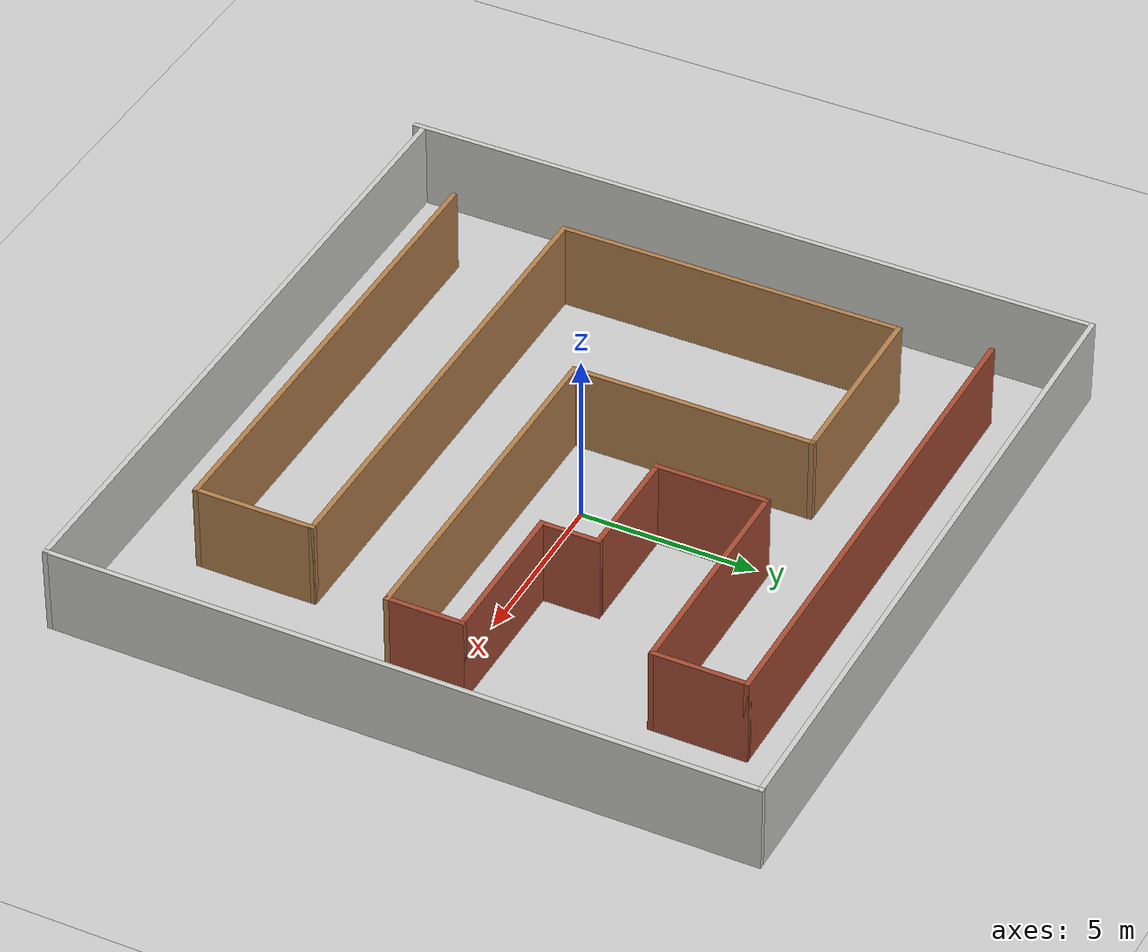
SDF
<sdf version="1.6">
 <world name="default">
  <light name="sun" type="directional">
   <pose>0 0 10 0 -0 0</pose>
   <diffuse>0.8 0.8 0.8 1</diffuse>
   <specular>0.2 0.2 0.2 1</specular>
   <attenuation>
    <range>1000</range>
    <constant>0.9</constant>
    <linear>0.01</linear>
    <quadratic>0.001</quadratic>
   </attenuation>
   <direction>-0.5 0.1 -0.9</direction>
  </light>
  <model name="ground_plane">
   <static>1</static>
   <link name="link">
    <collision name="collision">
     <geometry><plane><normal>0 0 1</normal><size>100 100</size></plane></geometry>
     <surface><friction><ode><mu>100</mu><mu2>50</mu2></ode></friction></surface>
    </collision>
    <visual name="visual">
     <cast_shadows>0</cast_shadows>
     <geometry><plane><normal>0 0 1</normal><size>100 100</size></plane></geometry>
     <material>
      <script><uri>file://media/materials/scripts/gazebo.material</uri><name>Gazebo/Grey</name></script>
     </material>
    </visual>
   </link>
  </model>
  <gravity>0 0 -9.8</gravity>
  <magnetic_field>6e-06 2.3e-05 -4.2e-05</magnetic_field>
  <atmosphere type="adiabatic"/>
  <physics name="default_physics" default="0" type="ode">
   <max_step_size>0.001</max_step_size>
   <real_time_factor>1</real_time_factor>
   <real_time_update_rate>1000</real_time_update_rate>
  </physics>
  <scene><ambient>0.4 0.4 0.4 1</ambient><background>0.7 0.7 0.7 1</background><shadows>1</shadows></scene>
  <spherical_coordinates>
   <surface_model>EARTH_WGS84</surface_model>
   <latitude_deg>0</latitude_deg>
   <longitude_deg>0</longitude_deg>
   <elevation>0</elevation>
   <heading_deg>0</heading_deg>
  </spherical_coordinates>
  <model name="MazeA">
   <pose>-0.16224 -0.208695 0 0 -0 0</pose>
   <link name="Wall_10">
    <collision name="Wall_10_Collision">
     <geometry><box><size>20.5 0.15 2.5</size></box></geometry>
     <pose>0 0 1.25 0 -0 0</pose>
    </collision>
    <visual name="Wall_10_Visual">
     <pose>0 0 1.25 0 -0 0</pose>
     <geometry><box><size>20.5 0.15 2.5</size></box></geometry>
     <material>
      <script><uri>file://media/materials/scripts/gazebo.material</uri><name>Gazebo/CeilingTiled</name></script>
      <ambient>1 1 1 1</ambient>
     </material>
     <meta><layer>0</layer></meta>
    </visual>
    <pose>-0 -9.8 0 0 -0 3.14159</pose>
   </link>
   <link name="Wall_12">
    <collision name="Wall_12_Collision">
     <geometry><box><size>15 0.15 2.5</size></box></geometry>
     <pose>0 0 1.25 0 -0 0</pose>
    </collision>
    <visual name="Wall_12_Visual">
     <pose>0 0 1.25 0 -0 0</pose>
     <geometry><box><size>15 0.15 2.5</size></box></geometry>
     <material>
      <script><uri>file://media/materials/scripts/gazebo.material</uri><name>Gazebo/Bricks</name></script>
      <ambient>1 1 1 1</ambient>
     </material>
     <meta><layer>0</layer></meta>
    </visual>
    <pose>-0.582205 8.11364 0 0 -0 0</pose>
   </link>
   <link name="Wall_13">
    <collision name="Wall_13_Collision">
     <geometry><box><size>2.75 0.15 2.5</size></box></geometry>
     <pose>0 0 1.25 0 -0 0</pose>
    </collision>
    <visual name="Wall_13_Visual">
     <pose>0 0 1.25 0 -0 0</pose>
     <geometry><box><size>2.75 0.15 2.5</size></box></geometry>
     <material>
      <script><uri>file://media/materials/scripts/gazebo.material</uri><name>Gazebo/Bricks</name></script>
      <ambient>1 1 1 1</ambient>
     </material>
     <meta><layer>0</layer></meta>
    </visual>
    <pose>6.84279 6.81364 0 0 -0 -1.5708</pose>
   </link>
   <link name="Wall_14">
    <collision name="Wall_14_Collision">
     <geometry><box><size>6.75 0.15 2.5</size></box></geometry>
     <pose>0 0 1.25 0 -0 0</pose>
    </collision>
    <visual name="Wall_14_Visual">
     <pose>0 0 1.25 0 -0 0</pose>
     <geometry><box><size>6.75 0.15 2.5</size></box></geometry>
     <material>
      <script><uri>file://media/materials/scripts/gazebo.material</uri><name>Gazebo/Bricks</name></script>
      <ambient>1 1 1 1</ambient>
     </material>
     <meta><layer>0</layer></meta>
    </visual>
    <pose>3.54279 5.51364 0 0 -0 3.14159</pose>
   </link>
   <link name="Wall_15">
    <collision name="Wall_15_Collision">
     <geometry><box><size>3.25 0.15 2.5</size></box></geometry>
     <pose>0 0 1.25 0 -0 0</pose>
    </collision>
    <visual name="Wall_15_Visual">
     <pose>0 0 1.25 0 -0 0</pose>
     <geometry><box><size>3.25 0.15 2.5</size></box></geometry>
     <material>
      <script><uri>file://media/materials/scripts/gazebo.material</uri><name>Gazebo/Bricks</name></script>
      <ambient>1 1 1 1</ambient>
     </material>
     <meta><layer>0</layer></meta>
    </visual>
    <pose>0.242795 3.96364 0 0 -0 -1.5708</pose>
   </link>
   <link name="Wall_16">
    <collision name="Wall_16_Collision">
     <geometry><box><size>3.5 0.15 2.5</size></box></geometry>
     <pose>0 0 1.25 0 -0 0</pose>
    </collision>
    <visual name="Wall_16_Visual">
     <pose>0 0 1.25 0 -0 0</pose>
     <geometry><box><size>3.5 0.15 2.5</size></box></geometry>
     <material>
      <script><uri>file://media/materials/scripts/gazebo.material</uri><name>Gazebo/Bricks</name></script>
      <ambient>1 1 1 1</ambient>
     </material>
     <meta><layer>0</layer></meta>
    </visual>
    <pose>1.91779 2.41364 0 0 -0 0</pose>
   </link>
   <link name="Wall_17">
    <collision name="Wall_17_Collision">
     <geometry><box><size>1.75 0.15 2.5</size></box></geometry>
     <pose>0 0 1.25 0 -0 0</pose>
    </collision>
    <visual name="Wall_17_Visual">
     <pose>0 0 1.25 0 -0 0</pose>
     <geometry><box><size>1.75 0.15 2.5</size></box></geometry>
     <material>
      <script><uri>file://media/materials/scripts/gazebo.material</uri><name>Gazebo/Bricks</name></script>
      <ambient>1 1 1 1</ambient>
     </material>
     <meta><layer>0</layer></meta>
    </visual>
    <pose>3.5928 1.61364 0 0 -0 -1.5708</pose>
   </link>
   <link name="Wall_18">
    <collision name="Wall_18_Collision">
     <geometry><box><size>4.5 0.15 2.5</size></box></geometry>
     <pose>0 0 1.25 0 -0 0</pose>
    </collision>
    <visual name="Wall_18_Visual">
     <pose>0 0 1.25 0 -0 0</pose>
     <geometry><box><size>4.5 0.15 2.5</size></box></geometry>
     <material>
      <script><uri>file://media/materials/scripts/gazebo.material</uri><name>Gazebo/Bricks</name></script>
      <ambient>1 1 1 1</ambient>
     </material>
     <meta><layer>0</layer></meta>
    </visual>
    <pose>5.76779 0.813639 0 0 -0 0</pose>
   </link>
   <link name="Wall_19">
    <collision name="Wall_19_Collision">
     <geometry><box><size>2.25 0.15 2.5</size></box></geometry>
     <pose>0 0 1.25 0 -0 0</pose>
    </collision>
    <visual name="Wall_19_Visual">
     <pose>0 0 1.25 0 -0 0</pose>
     <geometry><box><size>2.25 0.15 2.5</size></box></geometry>
     <material>
      <script><uri>file://media/materials/scripts/gazebo.material</uri><name>Gazebo/Bricks</name></script>
      <ambient>1 1 1 1</ambient>
     </material>
     <meta><layer>0</layer></meta>
    </visual>
    <pose>7.9428 -0.236361 0 0 -0 -1.5708</pose>
   </link>
   <link name="Wall_20">
    <collision name="Wall_20_Collision">
     <geometry><box><size>10.5 0.15 2.5</size></box></geometry>
     <pose>0 0 1.25 0 -0 0</pose>
    </collision>
    <visual name="Wall_20_Visual">
     <pose>0 0 1.25 0 -0 0</pose>
     <geometry><box><size>10.5 0.15 2.5</size></box></geometry>
     <material>
      <script><uri>file://media/materials/scripts/gazebo.material</uri><name>Gazebo/Wood</name></script>
      <ambient>1 1 1 1</ambient>
     </material>
     <meta><layer>0</layer></meta>
    </visual>
    <pose>2.7678 -1.28636 0 0 -0 3.14159</pose>
   </link>
   <link name="Wall_21">
    <collision name="Wall_21_Collision">
     <geometry><box><size>7 0.15 2.5</size></box></geometry>
     <pose>0 0 1.25 0 -0 0</pose>
    </collision>
    <visual name="Wall_21_Visual">
     <pose>0 0 1.25 0 -0 0</pose>
     <geometry><box><size>7 0.15 2.5</size></box></geometry>
     <material>
      <script><uri>file://media/materials/scripts/gazebo.material</uri><name>Gazebo/Wood</name></script>
      <ambient>1 1 1 1</ambient>
     </material>
     <meta><layer>0</layer></meta>
    </visual>
    <pose>-2.4072 2.13864 0 0 -0 1.5708</pose>
   </link>
   <link name="Wall_22">
    <collision name="Wall_22_Collision">
     <geometry><box><size>5.5 0.15 2.5</size></box></geometry>
     <pose>0 0 1.25 0 -0 0</pose>
    </collision>
    <visual name="Wall_22_Visual">
     <pose>0 0 1.25 0 -0 0</pose>
     <geometry><box><size>5.5 0.15 2.5</size></box></geometry>
     <material>
      <script><uri>file://media/materials/scripts/gazebo.material</uri><name>Gazebo/Wood</name></script>
      <ambient>1 1 1 1</ambient>
     </material>
     <meta><layer>0</layer></meta>
    </visual>
    <pose>-5.08221 5.56364 0 0 -0 3.14159</pose>
   </link>
   <link name="Wall_23">
    <collision name="Wall_23_Collision">
     <geometry><box><size>10 0.15 2.5</size></box></geometry>
     <pose>0 0 1.25 0 -0 0</pose>
    </collision>
    <visual name="Wall_23_Visual">
     <pose>0 0 1.25 0 -0 0</pose>
     <geometry><box><size>10 0.15 2.5</size></box></geometry>
     <material>
      <script><uri>file://media/materials/scripts/gazebo.material</uri><name>Gazebo/Wood</name></script>
      <ambient>1 1 1 1</ambient>
     </material>
     <meta><layer>0</layer></meta>
    </visual>
    <pose>-7.7572 0.638639 0 0 -0 -1.5708</pose>
   </link>
   <link name="Wall_24">
    <collision name="Wall_24_Collision">
     <geometry><box><size>14.25 0.15 2.5</size></box></geometry>
     <pose>0 0 1.25 0 -0 0</pose>
    </collision>
    <visual name="Wall_24_Visual">
     <pose>0 0 1.25 0 -0 0</pose>
     <geometry><box><size>14.25 0.15 2.5</size></box></geometry>
     <material>
      <script><uri>file://media/materials/scripts/gazebo.material</uri><name>Gazebo/Wood</name></script>
      <ambient>1 1 1 1</ambient>
     </material>
     <meta><layer>0</layer></meta>
    </visual>
    <pose>-0.707205 -4.28636 0 0 -0 0</pose>
   </link>
   <link name="Wall_25">
    <collision name="Wall_25_Collision">
     <geometry><box><size>3.5 0.15 2.5</size></box></geometry>
     <pose>0 0 1.25 0 -0 0</pose>
    </collision>
    <visual name="Wall_25_Visual">
     <pose>0 0 1.25 0 -0 0</pose>
     <geometry><box><size>3.5 0.15 2.5</size></box></geometry>
     <material>
      <script><uri>file://media/materials/scripts/gazebo.material</uri><name>Gazebo/Wood</name></script>
      <ambient>1 1 1 1</ambient>
     </material>
     <meta><layer>0</layer></meta>
    </visual>
    <pose>6.34279 -5.96136 0 0 -0 -1.5708</pose>
   </link>
   <link name="Wall_26">
    <collision name="Wall_26_Collision">
     <geometry><box><size>14.25 0.15 2.5</size></box></geometry>
     <pose>0 0 1.25 0 -0 0</pose>
    </collision>
    <visual name="Wall_26_Visual">
     <pose>0 0 1.25 0 -0 0</pose>
     <geometry><box><size>14.25 0.15 2.5</size></box></geometry>
     <material>
      <script><uri>file://media/materials/scripts/gazebo.material</uri><name>Gazebo/Wood</name></script>
      <ambient>1 1 1 1</ambient>
     </material>
     <meta><layer>0</layer></meta>
    </visual>
    <pose>-0.707205 -7.63636 0 0 -0 3.14159</pose>
   </link>
   <link name="Wall_7">
    <collision name="Wall_7_Collision">
     <geometry><box><size>20.25 0.15 2.5</size></box></geometry>
     <pose>0 0 1.25 0 -0 0</pose>
    </collision>
    <visual name="Wall_7_Visual">
     <pose>0 0 1.25 0 -0 0</pose>
     <geometry><box><size>20.25 0.15 2.5</size></box></geometry>
     <material>
      <script><uri>file://media/materials/scripts/gazebo.material</uri><name>Gazebo/CeilingTiled</name></script>
      <ambient>1 1 1 1</ambient>
     </material>
     <meta><layer>0</layer></meta>
    </visual>
    <pose>-10.175 -0 0 0 -0 1.5708</pose>
   </link>
   <link name="Wall_8">
    <collision name="Wall_8_Collision">
     <geometry><box><size>20.5 0.15 2.5</size></box></geometry>
     <pose>0 0 1.25 0 -0 0</pose>
    </collision>
    <visual name="Wall_8_Visual">
     <pose>0 0 1.25 0 -0 0</pose>
     <geometry><box><size>20.5 0.15 2.5</size></box></geometry>
     <material>
      <script><uri>file://media/materials/scripts/gazebo.material</uri><name>Gazebo/CeilingTiled</name></script>
      <ambient>1 1 1 1</ambient>
     </material>
     <meta><layer>0</layer></meta>
    </visual>
    <pose>-0 10.05 0 0 -0 0</pose>
   </link>
   <link name="Wall_9">
    <collision name="Wall_9_Collision">
     <geometry><box><size>20 0.15 2.5</size></box></geometry>
     <pose>0 0 1.25 0 -0 0</pose>
    </collision>
    <visual name="Wall_9_Visual">
     <pose>0 0 1.25 0 -0 0</pose>
     <geometry><box><size>20 0.15 2.5</size></box></geometry>
     <material>
      <script><uri>file://media/materials/scripts/gazebo.material</uri><name>Gazebo/CeilingTiled</name></script>
      <ambient>1 1 1 1</ambient>
     </material>
     <meta><layer>0</layer></meta>
    </visual>
    <pose>10.175 0.125 0 0 -0 -1.5708</pose>
   </link>
   <static>1</static>
  </model>
 </world>
</sdf>
